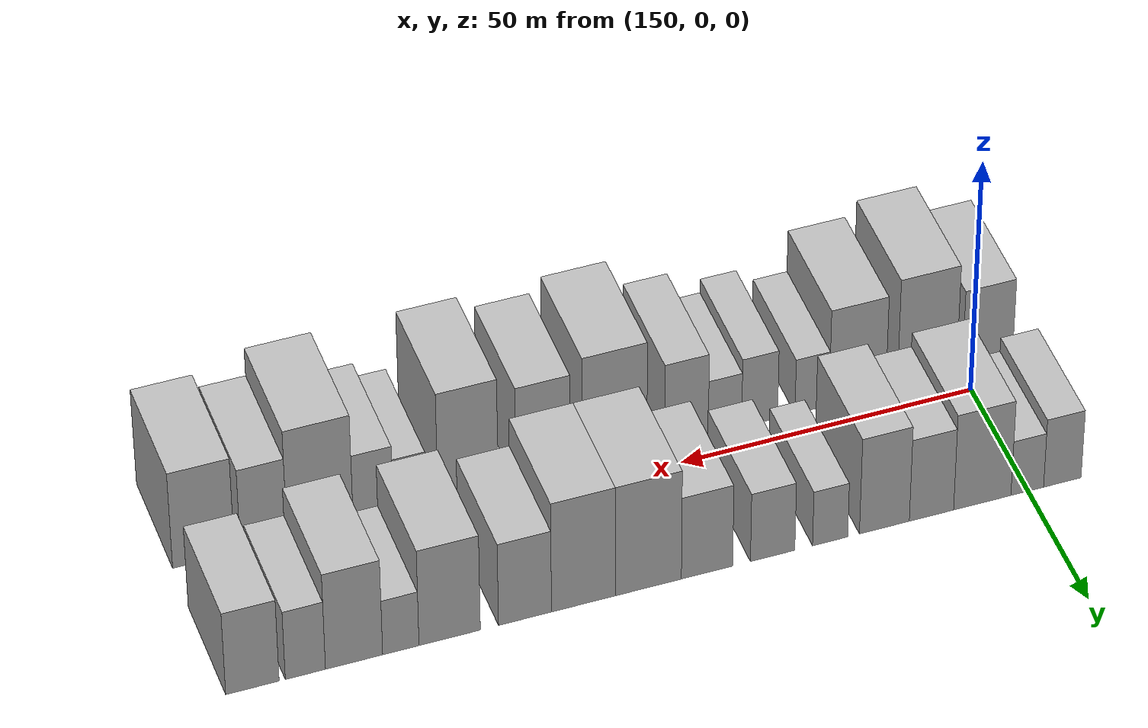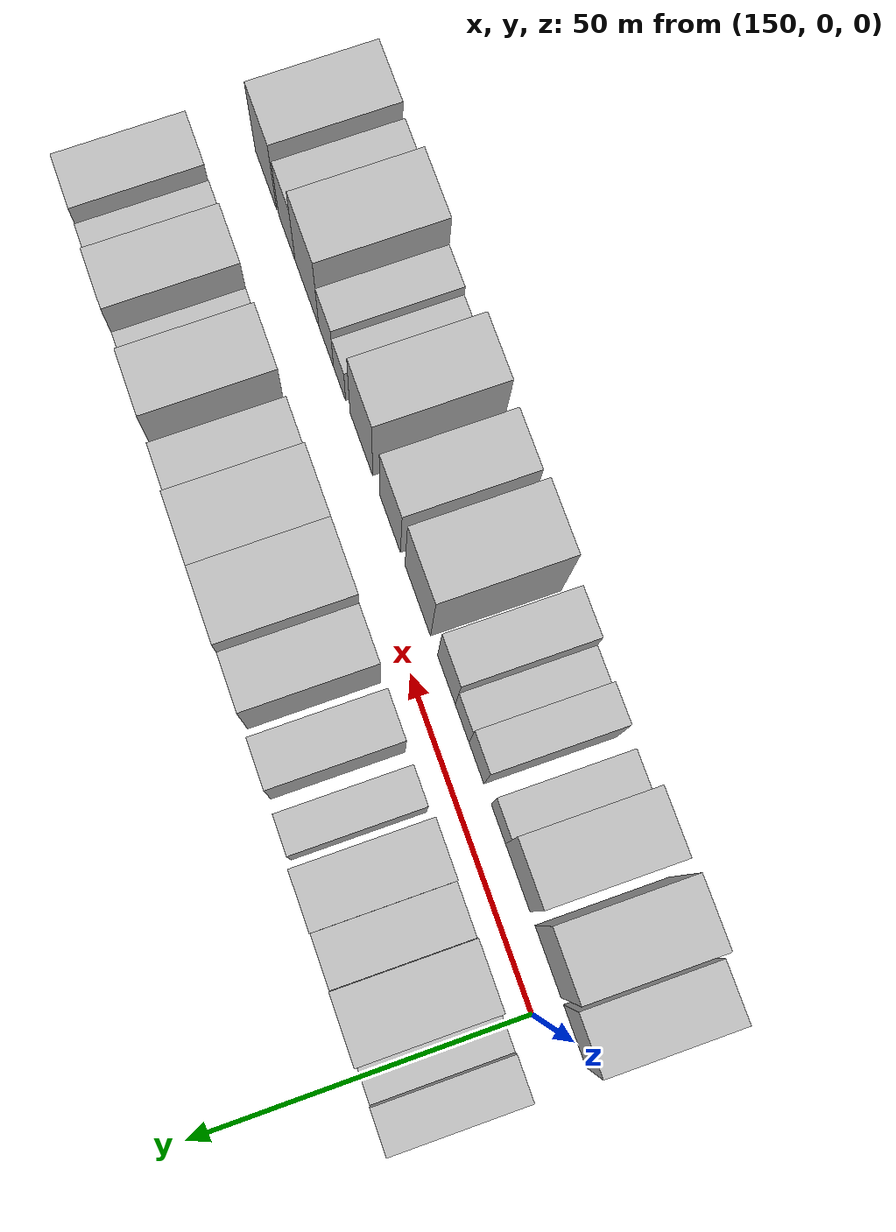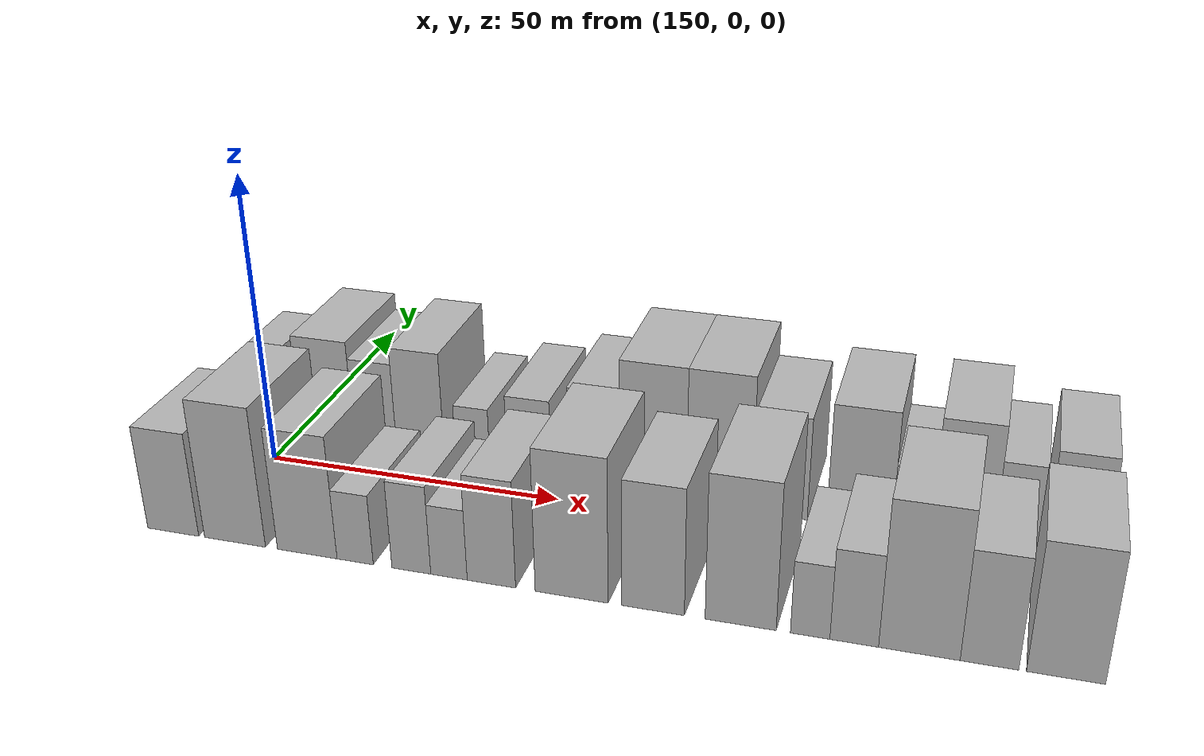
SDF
<sdf version="1.6">
 <world name="default">
  <model name="building_16">
   <static>1</static>
   <pose>144.0889 14.5000 0 0.000000 0.000000 1.570796</pose>
   <link name="link">
    <pose>0 0 7.50 0 0 0</pose>
    <collision name="collision"><geometry><box><size>20.0000 6.4680 15.0000</size></box></geometry></collision>
    <visual name="visual">
     <cast_shadows>0</cast_shadows>
     <geometry><box><size>20.0000 6.4680 15.0000</size></box></geometry>
     <material>
      <script>
       <uri>model://HANNAS_wall/materials/scripts</uri>
       <uri>model://HANNAS_wall/materials/textures</uri>
       <name>vrc/HANNAS_wall</name>
      </script>
     </material>
    </visual>
   </link>
  </model>
  <model name="building_17">
   <static>1</static>
   <pose>150.1326 14.5000 0 0.000000 0.000000 1.570796</pose>
   <link name="link">
    <pose>0 0 6.00 0 0 0</pose>
    <collision name="collision"><geometry><box><size>20.0000 5.6194 12.0000</size></box></geometry></collision>
    <visual name="visual">
     <cast_shadows>0</cast_shadows>
     <geometry><box><size>20.0000 5.6194 12.0000</size></box></geometry>
     <material>
      <script>
       <uri>model://HANNAS_wall/materials/scripts</uri>
       <uri>model://HANNAS_wall/materials/textures</uri>
       <name>vrc/HANNAS_wall</name>
      </script>
     </material>
    </visual>
   </link>
  </model>
  <model name="building_18">
   <static>1</static>
   <pose>157.8572 14.5000 0 0.000000 0.000000 1.570796</pose>
   <link name="link">
    <pose>0 0 10.50 0 0 0</pose>
    <collision name="collision"><geometry><box><size>20.0000 9.8298 21.0000</size></box></geometry></collision>
    <visual name="visual">
     <cast_shadows>0</cast_shadows>
     <geometry><box><size>20.0000 9.8298 21.0000</size></box></geometry>
     <material>
      <script>
       <uri>model://HANNAS_wall/materials/scripts</uri>
       <uri>model://HANNAS_wall/materials/textures</uri>
       <name>vrc/HANNAS_wall</name>
      </script>
     </material>
    </visual>
   </link>
  </model>
  <model name="building_19">
   <static>1</static>
   <pose>166.5571 14.5000 0 0.000000 0.000000 1.570796</pose>
   <link name="link">
    <pose>0 0 9.00 0 0 0</pose>
    <collision name="collision"><geometry><box><size>20.0000 7.5701 18.0000</size></box></geometry></collision>
    <visual name="visual">
     <cast_shadows>0</cast_shadows>
     <geometry><box><size>20.0000 7.5701 18.0000</size></box></geometry>
     <material>
      <script>
       <uri>model://HANNAS_wall/materials/scripts</uri>
       <uri>model://HANNAS_wall/materials/textures</uri>
       <name>vrc/HANNAS_wall</name>
      </script>
     </material>
    </visual>
   </link>
  </model>
  <model name="building_20">
   <static>1</static>
   <pose>174.5874 14.5000 0 0.000000 0.000000 1.570796</pose>
   <link name="link">
    <pose>0 0 10.50 0 0 0</pose>
    <collision name="collision"><geometry><box><size>20.0000 8.4906 21.0000</size></box></geometry></collision>
    <visual name="visual">
     <cast_shadows>0</cast_shadows>
     <geometry><box><size>20.0000 8.4906 21.0000</size></box></geometry>
     <material>
      <script>
       <uri>model://HANNAS_wall/materials/scripts</uri>
       <uri>model://HANNAS_wall/materials/textures</uri>
       <name>vrc/HANNAS_wall</name>
      </script>
     </material>
    </visual>
   </link>
  </model>
  <model name="building_21">
   <static>1</static>
   <pose>183.8116 14.5000 0 0.000000 0.000000 1.570796</pose>
   <link name="link">
    <pose>0 0 6.00 0 0 0</pose>
    <collision name="collision"><geometry><box><size>20.0000 5.9578 12.0000</size></box></geometry></collision>
    <visual name="visual">
     <cast_shadows>0</cast_shadows>
     <geometry><box><size>20.0000 5.9578 12.0000</size></box></geometry>
     <material>
      <script>
       <uri>model://HANNAS_wall/materials/scripts</uri>
       <uri>model://HANNAS_wall/materials/textures</uri>
       <name>vrc/HANNAS_wall</name>
      </script>
     </material>
    </visual>
   </link>
  </model>
  <model name="building_22">
   <static>1</static>
   <pose>193.5352 14.5000 0 0.000000 0.000000 1.570796</pose>
   <link name="link">
    <pose>0 0 7.50 0 0 0</pose>
    <collision name="collision"><geometry><box><size>20.0000 7.4895 15.0000</size></box></geometry></collision>
    <visual name="visual">
     <cast_shadows>0</cast_shadows>
     <geometry><box><size>20.0000 7.4895 15.0000</size></box></geometry>
     <material>
      <script>
       <uri>model://HANNAS_wall/materials/scripts</uri>
       <uri>model://HANNAS_wall/materials/textures</uri>
       <name>vrc/HANNAS_wall</name>
      </script>
     </material>
    </visual>
   </link>
  </model>
  <model name="building_23">
   <static>1</static>
   <pose>204.5852 14.5000 0 0.000000 0.000000 1.570796</pose>
   <link name="link">
    <pose>0 0 9.00 0 0 0</pose>
    <collision name="collision"><geometry><box><size>20.0000 8.6106 18.0000</size></box></geometry></collision>
    <visual name="visual">
     <cast_shadows>0</cast_shadows>
     <geometry><box><size>20.0000 8.6106 18.0000</size></box></geometry>
     <material>
      <script>
       <uri>model://HANNAS_wall/materials/scripts</uri>
       <uri>model://HANNAS_wall/materials/textures</uri>
       <name>vrc/HANNAS_wall</name>
      </script>
     </material>
    </visual>
   </link>
  </model>
  <model name="building_24">
   <static>1</static>
   <pose>214.4175 14.5000 0 0.000000 0.000000 1.570796</pose>
   <link name="link">
    <pose>0 0 12.00 0 0 0</pose>
    <collision name="collision"><geometry><box><size>20.0000 11.0539 24.0000</size></box></geometry></collision>
    <visual name="visual">
     <cast_shadows>0</cast_shadows>
     <geometry><box><size>20.0000 11.0539 24.0000</size></box></geometry>
     <material>
      <script>
       <uri>model://HANNAS_wall/materials/scripts</uri>
       <uri>model://HANNAS_wall/materials/textures</uri>
       <name>vrc/HANNAS_wall</name>
      </script>
     </material>
    </visual>
   </link>
  </model>
  <model name="building_25">
   <static>1</static>
   <pose>225.2516 14.5000 0 0.000000 0.000000 1.570796</pose>
   <link name="link">
    <pose>0 0 12.00 0 0 0</pose>
    <collision name="collision"><geometry><box><size>20.0000 10.6143 24.0000</size></box></geometry></collision>
    <visual name="visual">
     <cast_shadows>0</cast_shadows>
     <geometry><box><size>20.0000 10.6143 24.0000</size></box></geometry>
     <material>
      <script>
       <uri>model://HANNAS_wall/materials/scripts</uri>
       <uri>model://HANNAS_wall/materials/textures</uri>
       <name>vrc/HANNAS_wall</name>
      </script>
     </material>
    </visual>
   </link>
  </model>
  <model name="building_26">
   <static>1</static>
   <pose>234.9489 14.5000 0 0.000000 0.000000 1.570796</pose>
   <link name="link">
    <pose>0 0 9.00 0 0 0</pose>
    <collision name="collision"><geometry><box><size>20.0000 8.7802 18.0000</size></box></geometry></collision>
    <visual name="visual">
     <cast_shadows>0</cast_shadows>
     <geometry><box><size>20.0000 8.7802 18.0000</size></box></geometry>
     <material>
      <script>
       <uri>model://HANNAS_wall/materials/scripts</uri>
       <uri>model://HANNAS_wall/materials/textures</uri>
       <name>vrc/HANNAS_wall</name>
      </script>
     </material>
    </visual>
   </link>
  </model>
  <model name="building_27">
   <static>1</static>
   <pose>247.3967 14.5000 0 0.000000 0.000000 1.570796</pose>
   <link name="link">
    <pose>0 0 10.50 0 0 0</pose>
    <collision name="collision"><geometry><box><size>20.0000 10.1153 21.0000</size></box></geometry></collision>
    <visual name="visual">
     <cast_shadows>0</cast_shadows>
     <geometry><box><size>20.0000 10.1153 21.0000</size></box></geometry>
     <material>
      <script>
       <uri>model://HANNAS_wall/materials/scripts</uri>
       <uri>model://HANNAS_wall/materials/textures</uri>
       <name>vrc/HANNAS_wall</name>
      </script>
     </material>
    </visual>
   </link>
  </model>
  <model name="building_28">
   <static>1</static>
   <pose>255.4360 14.5000 0 0.000000 0.000000 1.570796</pose>
   <link name="link">
    <pose>0 0 6.00 0 0 0</pose>
    <collision name="collision"><geometry><box><size>20.0000 5.9634 12.0000</size></box></geometry></collision>
    <visual name="visual">
     <cast_shadows>0</cast_shadows>
     <geometry><box><size>20.0000 5.9634 12.0000</size></box></geometry>
     <material>
      <script>
       <uri>model://HANNAS_wall/materials/scripts</uri>
       <uri>model://HANNAS_wall/materials/textures</uri>
       <name>vrc/HANNAS_wall</name>
      </script>
     </material>
    </visual>
   </link>
  </model>
  <model name="building_29">
   <static>1</static>
   <pose>263.0962 14.5000 0 0.000000 0.000000 1.570796</pose>
   <link name="link">
    <pose>0 0 10.50 0 0 0</pose>
    <collision name="collision"><geometry><box><size>20.0000 9.3569 21.0000</size></box></geometry></collision>
    <visual name="visual">
     <cast_shadows>0</cast_shadows>
     <geometry><box><size>20.0000 9.3569 21.0000</size></box></geometry>
     <material>
      <script>
       <uri>model://HANNAS_wall/materials/scripts</uri>
       <uri>model://HANNAS_wall/materials/textures</uri>
       <name>vrc/HANNAS_wall</name>
      </script>
     </material>
    </visual>
   </link>
  </model>
  <model name="building_30">
   <static>1</static>
   <pose>271.0513 14.5000 0 0.000000 0.000000 1.570796</pose>
   <link name="link">
    <pose>0 0 7.50 0 0 0</pose>
    <collision name="collision"><geometry><box><size>20.0000 6.5532 15.0000</size></box></geometry></collision>
    <visual name="visual">
     <cast_shadows>0</cast_shadows>
     <geometry><box><size>20.0000 6.5532 15.0000</size></box></geometry>
     <material>
      <script>
       <uri>model://HANNAS_wall/materials/scripts</uri>
       <uri>model://HANNAS_wall/materials/textures</uri>
       <name>vrc/HANNAS_wall</name>
      </script>
     </material>
    </visual>
   </link>
  </model>
  <model name="building_31">
   <static>1</static>
   <pose>279.6698 14.5000 0 0.000000 0.000000 1.570796</pose>
   <link name="link">
    <pose>0 0 9.00 0 0 0</pose>
    <collision name="collision"><geometry><box><size>20.0000 8.6839 18.0000</size></box></geometry></collision>
    <visual name="visual">
     <cast_shadows>0</cast_shadows>
     <geometry><box><size>20.0000 8.6839 18.0000</size></box></geometry>
     <material>
      <script>
       <uri>model://HANNAS_wall/materials/scripts</uri>
       <uri>model://HANNAS_wall/materials/textures</uri>
       <name>vrc/HANNAS_wall</name>
      </script>
     </material>
    </visual>
   </link>
  </model>
  <model name="building_46">
   <static>1</static>
   <pose>145.4735 -14.5000 0 0.000000 0.000000 1.570796</pose>
   <link name="link">
    <pose>0 0 9.00 0 0 0</pose>
    <collision name="collision"><geometry><box><size>20.0000 8.8004 18.0000</size></box></geometry></collision>
    <visual name="visual">
     <cast_shadows>0</cast_shadows>
     <geometry><box><size>20.0000 8.8004 18.0000</size></box></geometry>
     <material>
      <script>
       <uri>model://HANNAS_wall/materials/scripts</uri>
       <uri>model://HANNAS_wall/materials/textures</uri>
       <name>vrc/HANNAS_wall</name>
      </script>
     </material>
    </visual>
   </link>
  </model>
  <model name="building_47">
   <static>1</static>
   <pose>156.0291 -14.5000 0 0.000000 0.000000 1.570796</pose>
   <link name="link">
    <pose>0 0 12.00 0 0 0</pose>
    <collision name="collision"><geometry><box><size>20.0000 10.3108 24.0000</size></box></geometry></collision>
    <visual name="visual">
     <cast_shadows>0</cast_shadows>
     <geometry><box><size>20.0000 10.3108 24.0000</size></box></geometry>
     <material>
      <script>
       <uri>model://HANNAS_wall/materials/scripts</uri>
       <uri>model://HANNAS_wall/materials/textures</uri>
       <name>vrc/HANNAS_wall</name>
      </script>
     </material>
    </visual>
   </link>
  </model>
  <model name="building_48">
   <static>1</static>
   <pose>168.1016 -14.5000 0 0.000000 0.000000 1.570796</pose>
   <link name="link">
    <pose>0 0 10.50 0 0 0</pose>
    <collision name="collision"><geometry><box><size>20.0000 9.8342 21.0000</size></box></geometry></collision>
    <visual name="visual">
     <cast_shadows>0</cast_shadows>
     <geometry><box><size>20.0000 9.8342 21.0000</size></box></geometry>
     <material>
      <script>
       <uri>model://HANNAS_wall/materials/scripts</uri>
       <uri>model://HANNAS_wall/materials/textures</uri>
       <name>vrc/HANNAS_wall</name>
      </script>
     </material>
    </visual>
   </link>
  </model>
  <model name="building_49">
   <static>1</static>
   <pose>175.9590 -14.5000 0 0.000000 0.000000 1.570796</pose>
   <link name="link">
    <pose>0 0 6.00 0 0 0</pose>
    <collision name="collision"><geometry><box><size>20.0000 5.8806 12.0000</size></box></geometry></collision>
    <visual name="visual">
     <cast_shadows>0</cast_shadows>
     <geometry><box><size>20.0000 5.8806 12.0000</size></box></geometry>
     <material>
      <script>
       <uri>model://HANNAS_wall/materials/scripts</uri>
       <uri>model://HANNAS_wall/materials/textures</uri>
       <name>vrc/HANNAS_wall</name>
      </script>
     </material>
    </visual>
   </link>
  </model>
  <model name="building_50">
   <static>1</static>
   <pose>184.9941 -14.5000 0 0.000000 0.000000 1.570796</pose>
   <link name="link">
    <pose>0 0 7.50 0 0 0</pose>
    <collision name="collision"><geometry><box><size>20.0000 6.1898 15.0000</size></box></geometry></collision>
    <visual name="visual">
     <cast_shadows>0</cast_shadows>
     <geometry><box><size>20.0000 6.1898 15.0000</size></box></geometry>
     <material>
      <script>
       <uri>model://HANNAS_wall/materials/scripts</uri>
       <uri>model://HANNAS_wall/materials/textures</uri>
       <name>vrc/HANNAS_wall</name>
      </script>
     </material>
    </visual>
   </link>
  </model>
  <model name="building_51">
   <static>1</static>
   <pose>190.9513 -14.5000 0 0.000000 0.000000 1.570796</pose>
   <link name="link">
    <pose>0 0 6.00 0 0 0</pose>
    <collision name="collision"><geometry><box><size>20.0000 5.7246 12.0000</size></box></geometry></collision>
    <visual name="visual">
     <cast_shadows>0</cast_shadows>
     <geometry><box><size>20.0000 5.7246 12.0000</size></box></geometry>
     <material>
      <script>
       <uri>model://HANNAS_wall/materials/scripts</uri>
       <uri>model://HANNAS_wall/materials/textures</uri>
       <name>vrc/HANNAS_wall</name>
      </script>
     </material>
    </visual>
   </link>
  </model>
  <model name="building_52">
   <static>1</static>
   <pose>197.5646 -14.5000 0 0.000000 0.000000 1.570796</pose>
   <link name="link">
    <pose>0 0 9.00 0 0 0</pose>
    <collision name="collision"><geometry><box><size>20.0000 7.5018 18.0000</size></box></geometry></collision>
    <visual name="visual">
     <cast_shadows>0</cast_shadows>
     <geometry><box><size>20.0000 7.5018 18.0000</size></box></geometry>
     <material>
      <script>
       <uri>model://HANNAS_wall/materials/scripts</uri>
       <uri>model://HANNAS_wall/materials/textures</uri>
       <name>vrc/HANNAS_wall</name>
      </script>
     </material>
    </visual>
   </link>
  </model>
  <model name="building_53">
   <static>1</static>
   <pose>209.8251 -14.5000 0 0.000000 0.000000 1.570796</pose>
   <link name="link">
    <pose>0 0 12.00 0 0 0</pose>
    <collision name="collision"><geometry><box><size>20.0000 11.0193 24.0000</size></box></geometry></collision>
    <visual name="visual">
     <cast_shadows>0</cast_shadows>
     <geometry><box><size>20.0000 11.0193 24.0000</size></box></geometry>
     <material>
      <script>
       <uri>model://HANNAS_wall/materials/scripts</uri>
       <uri>model://HANNAS_wall/materials/textures</uri>
       <name>vrc/HANNAS_wall</name>
      </script>
     </material>
    </visual>
   </link>
  </model>
  <model name="building_54">
   <static>1</static>
   <pose>221.9398 -14.5000 0 0.000000 0.000000 1.570796</pose>
   <link name="link">
    <pose>0 0 10.50 0 0 0</pose>
    <collision name="collision"><geometry><box><size>20.0000 9.2101 21.0000</size></box></geometry></collision>
    <visual name="visual">
     <cast_shadows>0</cast_shadows>
     <geometry><box><size>20.0000 9.2101 21.0000</size></box></geometry>
     <material>
      <script>
       <uri>model://HANNAS_wall/materials/scripts</uri>
       <uri>model://HANNAS_wall/materials/textures</uri>
       <name>vrc/HANNAS_wall</name>
      </script>
     </material>
    </visual>
   </link>
  </model>
  <model name="building_55">
   <static>1</static>
   <pose>234.6205 -14.5000 0 0.000000 0.000000 1.570796</pose>
   <link name="link">
    <pose>0 0 12.00 0 0 0</pose>
    <collision name="collision"><geometry><box><size>20.0000 10.1513 24.0000</size></box></geometry></collision>
    <visual name="visual">
     <cast_shadows>0</cast_shadows>
     <geometry><box><size>20.0000 10.1513 24.0000</size></box></geometry>
     <material>
      <script>
       <uri>model://HANNAS_wall/materials/scripts</uri>
       <uri>model://HANNAS_wall/materials/textures</uri>
       <name>vrc/HANNAS_wall</name>
      </script>
     </material>
    </visual>
   </link>
  </model>
  <model name="building_56">
   <static>1</static>
   <pose>244.4457 -14.5000 0 0.000000 0.000000 1.570796</pose>
   <link name="link">
    <pose>0 0 6.00 0 0 0</pose>
    <collision name="collision"><geometry><box><size>20.0000 5.4991 12.0000</size></box></geometry></collision>
    <visual name="visual">
     <cast_shadows>0</cast_shadows>
     <geometry><box><size>20.0000 5.4991 12.0000</size></box></geometry>
     <material>
      <script>
       <uri>model://HANNAS_wall/materials/scripts</uri>
       <uri>model://HANNAS_wall/materials/textures</uri>
       <name>vrc/HANNAS_wall</name>
      </script>
     </material>
    </visual>
   </link>
  </model>
  <model name="building_57">
   <static>1</static>
   <pose>250.5486 -14.5000 0 0.000000 0.000000 1.570796</pose>
   <link name="link">
    <pose>0 0 7.50 0 0 0</pose>
    <collision name="collision"><geometry><box><size>20.0000 6.7067 15.0000</size></box></geometry></collision>
    <visual name="visual">
     <cast_shadows>0</cast_shadows>
     <geometry><box><size>20.0000 6.7067 15.0000</size></box></geometry>
     <material>
      <script>
       <uri>model://HANNAS_wall/materials/scripts</uri>
       <uri>model://HANNAS_wall/materials/textures</uri>
       <name>vrc/HANNAS_wall</name>
      </script>
     </material>
    </visual>
   </link>
  </model>
  <model name="building_58">
   <static>1</static>
   <pose>259.4079 -14.5000 0 0.000000 0.000000 1.570796</pose>
   <link name="link">
    <pose>0 0 12.00 0 0 0</pose>
    <collision name="collision"><geometry><box><size>20.0000 11.0119 24.0000</size></box></geometry></collision>
    <visual name="visual">
     <cast_shadows>0</cast_shadows>
     <geometry><box><size>20.0000 11.0119 24.0000</size></box></geometry>
     <material>
      <script>
       <uri>model://HANNAS_wall/materials/scripts</uri>
       <uri>model://HANNAS_wall/materials/textures</uri>
       <name>vrc/HANNAS_wall</name>
      </script>
     </material>
    </visual>
   </link>
  </model>
  <model name="building_59">
   <static>1</static>
   <pose>268.7864 -14.5000 0 0.000000 0.000000 1.570796</pose>
   <link name="link">
    <pose>0 0 9.00 0 0 0</pose>
    <collision name="collision"><geometry><box><size>20.0000 7.7450 18.0000</size></box></geometry></collision>
    <visual name="visual">
     <cast_shadows>0</cast_shadows>
     <geometry><box><size>20.0000 7.7450 18.0000</size></box></geometry>
     <material>
      <script>
       <uri>model://HANNAS_wall/materials/scripts</uri>
       <uri>model://HANNAS_wall/materials/textures</uri>
       <name>vrc/HANNAS_wall</name>
      </script>
     </material>
    </visual>
   </link>
  </model>
  <model name="building_60">
   <static>1</static>
   <pose>278.7642 -14.5000 0 0.000000 0.000000 1.570796</pose>
   <link name="link">
    <pose>0 0 10.50 0 0 0</pose>
    <collision name="collision"><geometry><box><size>20.0000 10.2107 21.0000</size></box></geometry></collision>
    <visual name="visual">
     <cast_shadows>0</cast_shadows>
     <geometry><box><size>20.0000 10.2107 21.0000</size></box></geometry>
     <material>
      <script>
       <uri>model://HANNAS_wall/materials/scripts</uri>
       <uri>model://HANNAS_wall/materials/textures</uri>
       <name>vrc/HANNAS_wall</name>
      </script>
     </material>
    </visual>
   </link>
  </model>
 </world>
</sdf>
